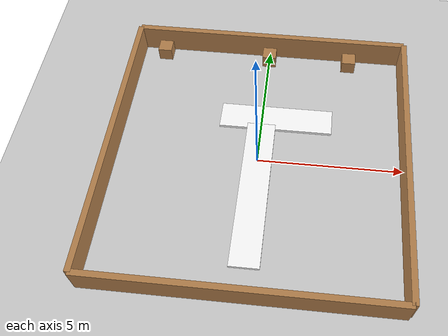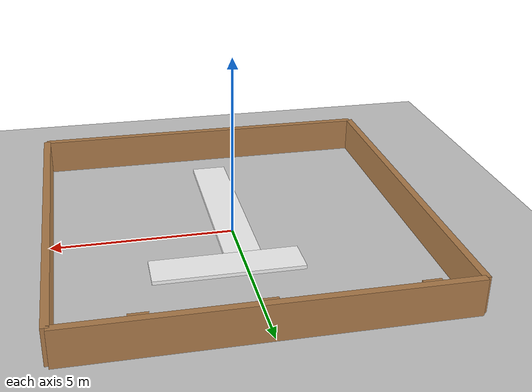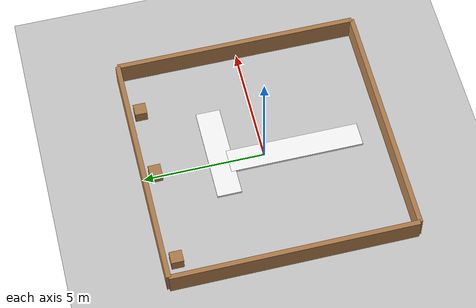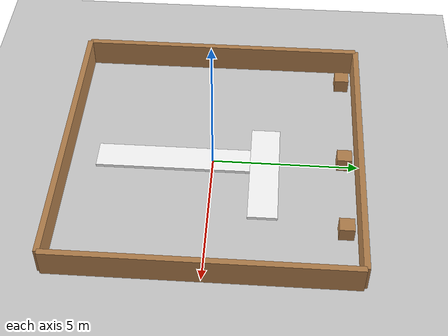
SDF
<?xml version="1.0"?>
<sdf version="1.6">
<world name="10m_safe_world">

  <!-- 光照 -->
  <include>
    <uri>model://sun</uri>
  </include>

  <!-- 地面 10m×10m -->
  <model name="ground_plane">
    <static>true</static>
    <link name="link">
      <collision name="collision">
        <geometry><plane><normal>0 0 1</normal><size>10 10</size></plane></geometry>
      </collision>
      <visual name="visual">
        <geometry><plane><normal>0 0 1</normal><size>10 10</size></plane></geometry>
        <material>
          <script><uri>file://media/materials/scripts/gazebo.material</uri><name>Gazebo/Grey</name></script>
        </material>
      </visual>
    </link>
  </model>

  <!-- 木质围墙（边界） -->
  <model name="fence">
    <static>true</static>
    <link name="link">
      <collision name="n"><pose>0 5 0.5 0 0 0</pose><geometry><box><size>10 0.2 1</size></box></geometry></collision>
      <visual name="nv"><pose>0 5 0.5 0 0 0</pose><geometry><box><size>10 0.2 1</size></box></geometry>
        <material><script><uri>file://media/materials/scripts/gazebo.material</uri><name>Gazebo/Wood</name></script></material></visual>

      <collision name="s"><pose>0 -5 0.5 0 0 0</pose><geometry><box><size>10 0.2 1</size></box></geometry></collision>
      <visual name="sv"><pose>0 -5 0.5 0 0 0</pose><geometry><box><size>10 0.2 1</size></box></geometry>
        <material><script><uri>file://media/materials/scripts/gazebo.material</uri><name>Gazebo/Wood</name></script></material></visual>

      <collision name="e"><pose>5 0 0.5 0 0 0</pose><geometry><box><size>0.2 10 1</size></box></geometry></collision>
      <visual name="ev"><pose>5 0 0.5 0 0 0</pose><geometry><box><size>0.2 10 1</size></box></geometry>
        <material><script><uri>file://media/materials/scripts/gazebo.material</uri><name>Gazebo/Wood</name></script></material></visual>

      <collision name="w"><pose>-5 0 0.5 0 0 0</pose><geometry><box><size>0.2 10 1</size></box></geometry></collision>
      <visual name="wv"><pose>-5 0 0.5 0 0 0</pose><geometry><box><size>0.2 10 1</size></box></geometry>
        <material><script><uri>file://media/materials/scripts/gazebo.material</uri><name>Gazebo/Wood</name></script></material></visual>
    </link>
  </model>

  <!-- ===================== T 型障碍（横板 + 加长竖板） ===================== -->
  <!-- 横板：中心 (0, 2)，尺寸 5.0×1.0×0.1，覆盖 Y∈[1.5, 2.5] -->
  <!-- 竖板：加长 2m，总长 5.5m，顶部连接横板下边缘 Y=1.5，覆盖 Y∈[-4.0, 1.5] -->
  <model name="t_obstacle_flat">
    <static>true</static>
    <pose>0 0 0.05 0 0 0</pose>

    <!-- 横板 -->
    <link name="horizontal_bar">
      <pose>0.5 1.8 0 0 0 0</pose>
      <collision name="collision">
        <geometry><box><size>4.0 1 0.1</size></box></geometry>
      </collision>
      <visual name="visual">
        <geometry><box><size>4.0 1 0.1</size></box></geometry>
        <material>
          <ambient>0.9 0.9 0.9 1</ambient>
          <diffuse>1.0 1.0 1.0 1</diffuse>
          <specular>0.5 0.5 0.5 1</specular>
        </material>
      </visual>
    </link>

    <!-- 竖板（加长至 5.5 m，中心 Y = 1.5 - 5.5/2 = -1.25） -->
    <link name="vertical_bar">
      <pose>0 -1.25 0 0 0 0</pose>
      <collision name="collision">
        <geometry><box><size>1.0 5.5 0.1</size></box></geometry>
      </collision>
      <visual name="visual">
        <geometry><box><size>1.0 5.5 0.1</size></box></geometry>
        <material>
          <ambient>0.9 0.9 0.9 1</ambient>
          <diffuse>1.0 1.0 1.0 1</diffuse>
          <specular>0.5 0.5 0.5 1</specular>
        </material>
      </visual>
    </link>
  </model>

  <!-- ===================== 顶部三个小箱子（改为木制材质） ===================== -->
  <!-- 箱子1 -->
  <model name="box_left">
    <static>true</static>
    <pose>-4 4.5 0.35 0 0 0</pose>
    <link name="link">
      <collision name="collision">
        <geometry><box><size>0.5 0.5 0.5</size></box></geometry>
      </collision>
      <visual name="visual">
        <geometry><box><size>0.5 0.5 0.5</size></box></geometry>
        <material>
          <script><uri>file://media/materials/scripts/gazebo.material</uri><name>Gazebo/Wood</name></script>
        </material>
      </visual>
    </link>
  </model>

  <!-- 箱子2 -->
  <model name="box_right">
    <static>true</static>
    <pose>3 4.5 0.35 0 0 0</pose>
    <link name="link">
      <collision name="collision">
        <geometry><box><size>0.5 0.5 0.5</size></box></geometry>
      </collision>
      <visual name="visual">
        <geometry><box><size>0.5 0.5 0.5</size></box></geometry>
        <material>
          <script><uri>file://media/materials/scripts/gazebo.material</uri><name>Gazebo/Wood</name></script>
        </material>
      </visual>
    </link>
  </model>

  <!-- 箱子3（中央） -->
  <model name="box_central">
    <static>true</static>
    <pose>0 4.5 0.35 0 0 0</pose>
    <link name="link">
      <collision name="collision">
        <geometry><box><size>0.5 0.5 0.5</size></box></geometry>
      </collision>
      <visual name="visual">
        <geometry><box><size>0.5 0.5 0.5</size></box></geometry>
        <material>
          <script><uri>file://media/materials/scripts/gazebo.material</uri><name>Gazebo/Wood</name></script>
        </material>
      </visual>
    </link>
  </model>

  <!-- 俯视视角 -->
  <gui>
    <camera name="view">
      <pose>0 0 12 0 1.5708 1.5708</pose>
    </camera>
  </gui>

</world>
</sdf>
